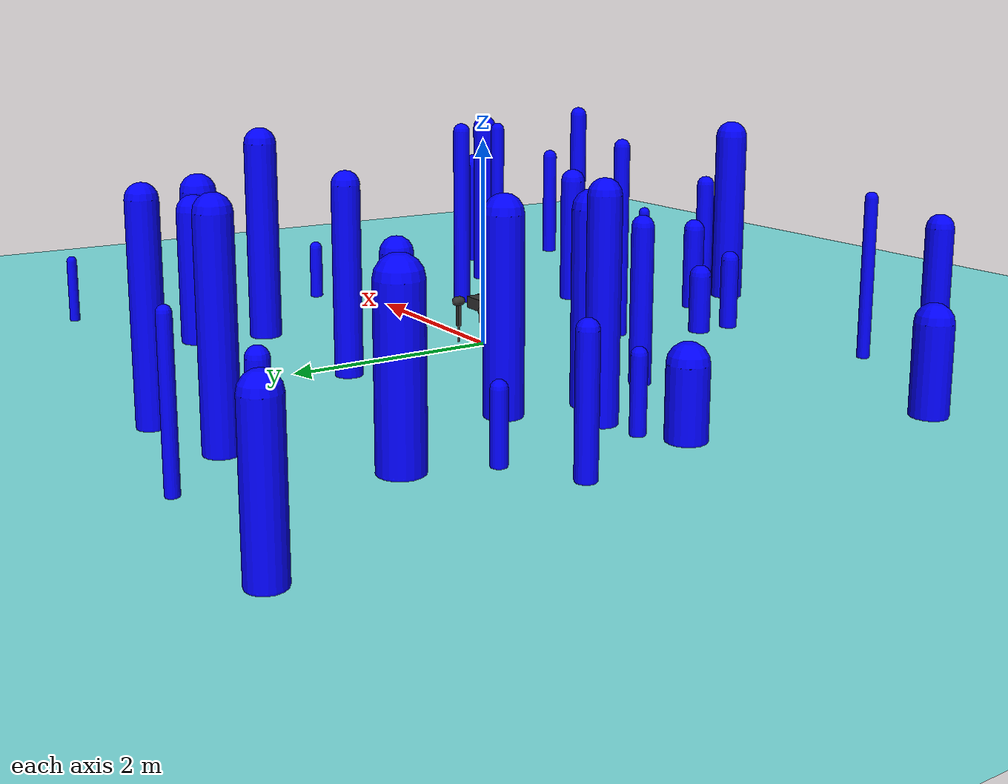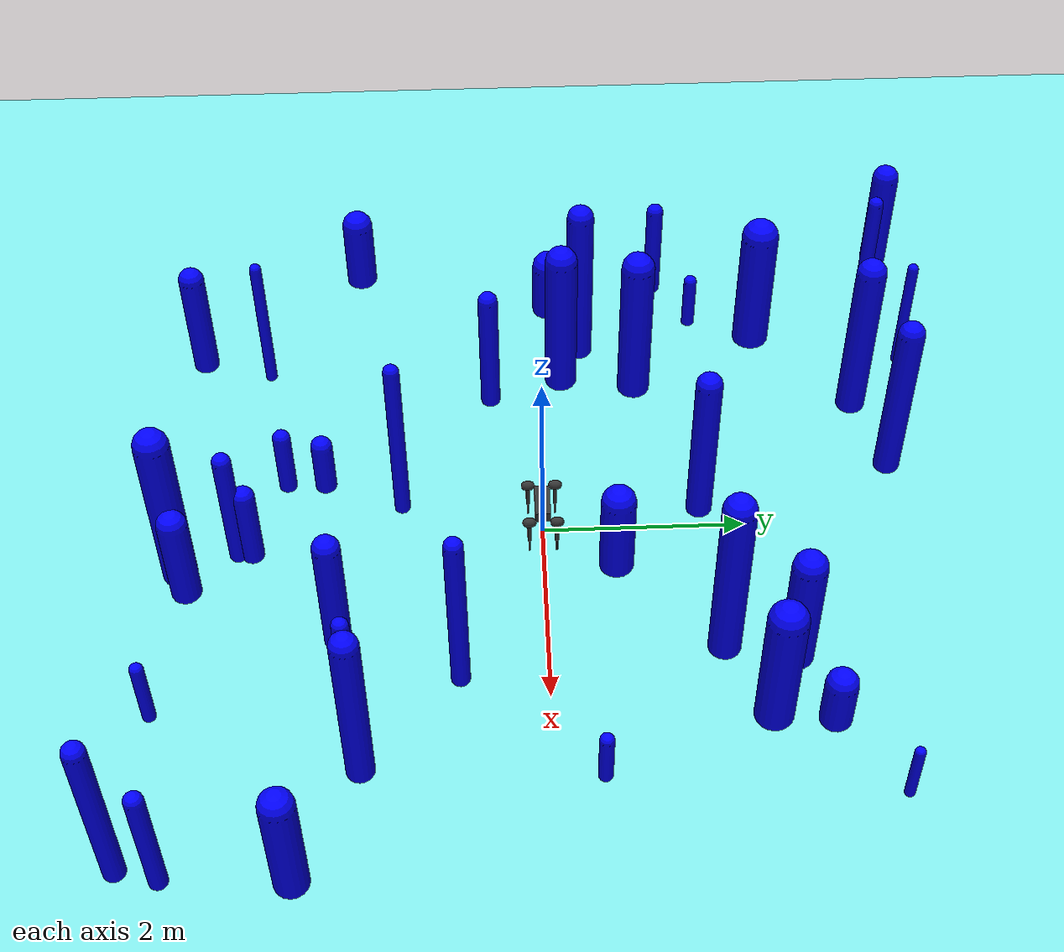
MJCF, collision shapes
<mujoco>
    <include file="aliengo.xml"/>
    <worldbody>

        <body name="obstacle_0" pos="1.627572791351251 2.303359444332589 0.6460351813359593" mocap="true">
            <geom type="capsule" size="0.16481485588494513 0.6460351813359593" rgba="0 0 1 1"/>
        </body>

        <body name="obstacle_1" pos="2.501388179700389 -1.7599431045375935 0.9032814938991485" mocap="true">
            <geom type="capsule" size="0.07671281822714426 0.9032814938991485" rgba="0 0 1 1"/>
        </body>

        <body name="obstacle_2" pos="1.7641580741112657 -0.8218137306497972 0.9454634746737409" mocap="true">
            <geom type="capsule" size="0.09025830902053814 0.9454634746737409" rgba="0 0 1 1"/>
        </body>

        <body name="obstacle_3" pos="-0.7082837938260438 -2.54146461151491 0.34602050637312964" mocap="true">
            <geom type="capsule" size="0.08904184026866771 0.34602050637312964" rgba="0 0 1 1"/>
        </body>

        <body name="obstacle_4" pos="2.7253809364022086 -1.7203715719378891 0.9115632153716917" mocap="true">
            <geom type="capsule" size="0.13283380764818337 0.9115632153716917" rgba="0 0 1 1"/>
        </body>

        <body name="obstacle_5" pos="3.818010891947373 -2.2709081095375367 0.6004305844406179" mocap="true">
            <geom type="capsule" size="0.1600483449986283 0.6004305844406179" rgba="0 0 1 1"/>
        </body>

        <body name="obstacle_6" pos="-3.8225458136954655 -1.8781623352359365 0.38457949118635376" mocap="true">
            <geom type="capsule" size="0.16142497978097764 0.38457949118635376" rgba="0 0 1 1"/>
        </body>

        <body name="obstacle_7" pos="2.8671798079670108 0.44816107045683484 0.2734955801953863" mocap="true">
            <geom type="capsule" size="0.06845320364538676 0.2734955801953863" rgba="0 0 1 1"/>
        </body>

        <body name="obstacle_8" pos="-3.540543442603399 1.35659232261197 0.5412586417980193" mocap="true">
            <geom type="capsule" size="0.08766913263305527 0.5412586417980193" rgba="0 0 1 1"/>
        </body>

        <body name="obstacle_9" pos="-2.9456790775629518 0.4230713059723952 0.3162603754019131" mocap="true">
            <geom type="capsule" size="0.067755209713386 0.3162603754019131" rgba="0 0 1 1"/>
        </body>

        <body name="obstacle_10" pos="0.4002204765707571 -3.5230773550857704 0.904172643406322" mocap="true">
            <geom type="capsule" size="0.1682016153930489 0.904172643406322" rgba="0 0 1 1"/>
        </body>

        <body name="obstacle_11" pos="-0.24442756612374517 1.57278336849288 0.8577828238043523" mocap="true">
            <geom type="capsule" size="0.12942745896585287 0.8577828238043523" rgba="0 0 1 1"/>
        </body>

        <body name="obstacle_12" pos="-3.4193399995293934 3.719734436635636 0.601889623752865" mocap="true">
            <geom type="capsule" size="0.07912744181605924 0.601889623752865" rgba="0 0 1 1"/>
        </body>

        <body name="obstacle_13" pos="-1.6398596339627138 3.3081081611211456 0.9033576533204553" mocap="true">
            <geom type="capsule" size="0.14910889426145119 0.9033576533204553" rgba="0 0 1 1"/>
        </body>

        <body name="obstacle_14" pos="0.19032512651673006 -2.8338142092360563 0.4237714684080312" mocap="true">
            <geom type="capsule" size="0.10968468599267125 0.4237714684080312" rgba="0 0 1 1"/>
        </body>

        <body name="obstacle_15" pos="1.4894651103276786 1.6471551571400873 0.9626741471722771" mocap="true">
            <geom type="capsule" size="0.1579980514237112 0.9626741471722771" rgba="0 0 1 1"/>
        </body>

        <body name="obstacle_16" pos="-1.8475154372999665 -0.4729236829008725 0.6954375428580818" mocap="true">
            <geom type="capsule" size="0.09944244539240957 0.6954375428580818" rgba="0 0 1 1"/>
        </body>

        <body name="obstacle_17" pos="-2.2893830647247198 -2.8045349978205794 0.7536563469511894" mocap="true">
            <geom type="capsule" size="0.05991682633999633 0.7536563469511894" rgba="0 0 1 1"/>
        </body>

        <body name="obstacle_18" pos="3.6549862071949724 -3.778872192885758 0.9011818195173762" mocap="true">
            <geom type="capsule" size="0.10343162384003311 0.9011818195173762" rgba="0 0 1 1"/>
        </body>

        <body name="obstacle_19" pos="3.154038706176606 3.103704553344868 0.31250206608363085" mocap="true">
            <geom type="capsule" size="0.050461628577882736 0.31250206608363085" rgba="0 0 1 1"/>
        </body>

        <body name="obstacle_20" pos="2.2776719917227393 2.015926485920618 0.6925234432148537" mocap="true">
            <geom type="capsule" size="0.1848717999239312 0.6925234432148537" rgba="0 0 1 1"/>
        </body>

        <body name="obstacle_21" pos="2.0662542305659315 -3.652269989390959 0.3562685002323092" mocap="true">
            <geom type="capsule" size="0.06460954080885216 0.3562685002323092" rgba="0 0 1 1"/>
        </body>

        <body name="obstacle_22" pos="0.45350954472271887 0.7031539207474511 0.4539159612228346" mocap="true">
            <geom type="capsule" size="0.16919973210870015 0.4539159612228346" rgba="0 0 1 1"/>
        </body>

        <body name="obstacle_23" pos="-3.2481396040690864 0.19132491279124864 0.3005037174687888" mocap="true">
            <geom type="capsule" size="0.17135430352371162 0.3005037174687888" rgba="0 0 1 1"/>
        </body>

        <body name="obstacle_24" pos="-2.1191905448041615 0.2769985604064775 0.8223321899577873" mocap="true">
            <geom type="capsule" size="0.16491765197026775 0.8223321899577873" rgba="0 0 1 1"/>
        </body>

        <body name="obstacle_25" pos="-2.570203042221957 0.49181102198395266 0.914031914191588" mocap="true">
            <geom type="capsule" size="0.13745553426706553 0.914031914191588" rgba="0 0 1 1"/>
        </body>

        <body name="obstacle_26" pos="-2.5110104248256704 -3.5117202456150265 0.5989975031526972" mocap="true">
            <geom type="capsule" size="0.1307794473572222 0.5989975031526972" rgba="0 0 1 1"/>
        </body>

        <body name="obstacle_27" pos="-1.9841847821621084 1.041247166777083 0.824844547852754" mocap="true">
            <geom type="capsule" size="0.16878481311586163 0.824844547852754" rgba="0 0 1 1"/>
        </body>

        <body name="obstacle_28" pos="-2.280994036429666 3.9084826116120315 0.6376844156272528" mocap="true">
            <geom type="capsule" size="0.0559217683436197 0.6376844156272528" rgba="0 0 1 1"/>
        </body>

        <body name="obstacle_29" pos="-0.7527525647776407 3.5438127713210443 0.9051307275745353" mocap="true">
            <geom type="capsule" size="0.1312675297199864 0.9051307275745353" rgba="0 0 1 1"/>
        </body>

        <body name="obstacle_30" pos="-3.9288679923074046 3.9142399375919004 0.5760310331632095" mocap="true">
            <geom type="capsule" size="0.14006782851110666 0.5760310331632095" rgba="0 0 1 1"/>
        </body>

        <body name="obstacle_31" pos="-0.698444372178864 -2.159036352855769 0.2830540117169748" mocap="true">
            <geom type="capsule" size="0.10782510143855567 0.2830540117169748" rgba="0 0 1 1"/>
        </body>

        <body name="obstacle_32" pos="3.7634169947890195 -3.396649400099145 0.6294148625651081" mocap="true">
            <geom type="capsule" size="0.08675471005581187 0.6294148625651081" rgba="0 0 1 1"/>
        </body>

        <body name="obstacle_33" pos="-2.9682317092994532 1.7138333303919344 0.2883247501606115" mocap="true">
            <geom type="capsule" size="0.06847115453827914 0.2883247501606115" rgba="0 0 1 1"/>
        </body>

        <body name="obstacle_34" pos="-0.36791258568953644 -1.3834955250134762 0.9434895564789196" mocap="true">
            <geom type="capsule" size="0.07803576999290854 0.9434895564789196" rgba="0 0 1 1"/>
        </body>

        <body name="obstacle_35" pos="0.18620242055745884 -2.974912671483107 0.6662939289869307" mocap="true">
            <geom type="capsule" size="0.09122862145755602 0.6662939289869307" rgba="0 0 1 1"/>
        </body>

        <body name="obstacle_36" pos="2.3447521965156923 2.569216789689029 0.26418795391272876" mocap="true">
            <geom type="capsule" size="0.1529617924649936 0.26418795391272876" rgba="0 0 1 1"/>
        </body>

        <body name="obstacle_37" pos="0.6292230824485046 -3.443536497871457 0.49016609000490385" mocap="true">
            <geom type="capsule" size="0.14647377233884162 0.49016609000490385" rgba="0 0 1 1"/>
        </body>

        <body name="obstacle_38" pos="1.2607997237957411 -1.96938025396937 0.6605299526739741" mocap="true">
            <geom type="capsule" size="0.13199365894788184 0.6605299526739741" rgba="0 0 1 1"/>
        </body>

        <body name="obstacle_39" pos="-2.703970659541201 2.370959473970278 0.7023144663687624" mocap="true">
            <geom type="capsule" size="0.19096949540743702 0.7023144663687624" rgba="0 0 1 1"/>
        </body>

    </worldbody>
    </mujoco>

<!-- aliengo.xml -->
<mujoco model="aliengo_description">
    <compiler angle="radian" meshdir="meshes/" />
    <size njmax="500" nconmax="100" />
    <option gravity='0 0 -9.806' iterations='50' solver='Newton' timestep='0.002' cone='elliptic'  impratio="100">

    </option>

    <default>
        <geom contype="1" conaffinity="1" friction="0.6 0.3 0.3" rgba="0.5 0.6 0.7 1" margin="0.001" group="0"/>

        <light castshadow="false" diffuse="1 1 1"/>
        <motor ctrlrange="-40 40" ctrllimited="true"/>
        <camera fovy="60"/>
        <joint damping="0.01" armature="0.01" frictionloss="0.2" />

    </default>

    <asset>
        <mesh name="trunk" file="trunk.stl" />
        <mesh name="hip" file="hip.stl" />
        <mesh name="thigh_mirror" file="thigh_mirror.stl" />
        <mesh name="calf" file="calf.stl" />
        <mesh name="thigh" file="thigh.stl" />
    </asset>

    <asset>
        <texture type="skybox" builtin="gradient" rgb1="1.0 1.0 1.0" rgb2="1.0 1.0 1.0" width="512" height="512"/>
        <texture name="plane" type="2d" builtin="flat" rgb1="1 1 1" rgb2="1 1 1" width="512" height="512" mark="cross" markrgb="0 0 0"/>
        <material name="plane" reflectance="0.0" texture="plane" texrepeat="3 3" texuniform="true"/>
    </asset>

    <visual>
        <rgba com="0.502 1.0 0 0.5" contactforce="0.98 0.4 0.4 0.7" contactpoint="1.0 1.0 0.6 0.4"/>
        <scale com="0.2" forcewidth="0.035" contactwidth="0.10" contactheight="0.04"/>
    </visual>

    <worldbody>
        <light directional="true" diffuse=".8 .8 .8" pos="0 0 10" dir="0 0 -10"/>
        <camera name="track" mode="trackcom" pos="0 -1.3 1.6" xyaxes="1 0 0 0 0.707 0.707"/>
        <geom name='floor' type='plane' conaffinity='1' condim='3' contype='1' rgba="0.5 0.9 0.9 0.1" material='plane' pos='0 0 0' size='0 0 1'/>

        <body name="trunk" pos="0 0 0.4">
            <inertial pos="0.00846406 0.00404455 -0.000762916" quat="-3.12625e-05 0.708321 0.00247254 0.705886" mass="9.042" diaginertia="0.174706 0.161175 0.033357" />
            <joint type="free" />
            <geom type="mesh" contype="0" conaffinity="0" group="1" rgba="0.2 0.2 0.2 1" mesh="trunk" />
            <geom size="0.18 0.075 0.056" type="box" rgba="0.2 0.2 0.2 0" />
            <geom size="0.0005 0.0005 0.0005" type="box" contype="0" conaffinity="0" group="1" rgba="0.8 0 0 0" />
            <geom size="0.0005 0.0005 0.0005" type="box" rgba="0.8 0 0 0" />
            <site name="imu" pos="0 0 0"/>

            <body name="FR_hip" pos="0.2399 -0.051 0">
                <inertial pos="-0.022191 -0.015144 -1.5e-05" quat="0.0135493 0.706835 -0.0117635 0.707151" mass="1.993" diaginertia="0.00558695 0.00491009 0.00290132" />
                <joint name="FR_hip_joint" pos="0 0 0" axis="1 0 0" limited="true" range="-1.22 1.22" />
                <geom quat="0 1 0 0" type="mesh" contype="0" conaffinity="0" group="1" rgba="0.2 0.2 0.2 1" mesh="hip" />
                <geom size="0.046 0.0209" pos="0 -0.083 0" quat="0.707107 0.707107 0 0" type="capsule" rgba="0.2 0.2 0.2 0" />
                <body name="FR_thigh" pos="0 -0.083 0">
                    <inertial pos="-0.005607 0.003877 -0.048199" quat="0.694544 -0.0335669 -0.031246 0.717987" mass="0.639" diaginertia="0.0058474 0.00571186 0.000324584" />
                    <joint name="FR_thigh_joint" pos="0 0 0" axis="0 1 0" limited="true" range="0 1.8"/>
                    <geom type="mesh" contype="0" conaffinity="0" group="1" rgba="0.2 0.2 0.2 1" mesh="thigh_mirror" />
                    <geom size="0.125 0.0187 0.0215" pos="0 0 -0.125" quat="0.707107 0 0.707107 0" type="box" rgba="0.2 0.2 0.2 0" />
                    <body name="FR_calf" pos="0 0 -0.25">
                        <inertial pos="0.00215606 4.88427e-05 -0.166671" quat="0.707462 0.00517582 0.00535172 0.706712" mass="0.267" diaginertia="0.00690975 0.00689712 5.4885e-05" />
                        <joint name="FR_calf_joint" pos="0 0 0" axis="0 1 0" limited="true" range="-2.78 -0.65" />
                        <geom type="mesh" contype="0" conaffinity="0" group="1" rgba="0 0 0 1" mesh="calf" />
                        <geom size="0.125 0.0104 0.008" pos="0 0 -0.125" quat="0.707107 0 0.707107 0" type="box" rgba="0 0 0 0" />
                        <geom size="0.0165" pos="0 0 -0.25" contype="0" conaffinity="0" group="1" rgba="0 0 0 1" />
                        <geom size="0.0265" pos="0 0 -0.25" rgba="0 0 0 1" />
                    </body>
                </body>
            </body>
            <body name="FL_hip" pos="0.2399 0.051 0">
                <inertial pos="-0.022191 0.015144 -1.5e-05" quat="-0.0135493 0.706835 0.0117635 0.707151" mass="1.993" diaginertia="0.00558695 0.00491009 0.00290132" />
                <joint name="FL_hip_joint" pos="0 0 0" axis="1 0 0" limited="true" range="-1.22 1.22" />
                <geom type="mesh" contype="0" conaffinity="0" group="1" rgba="0.2 0.2 0.2 1" mesh="hip" />
                <geom size="0.046 0.0209" pos="0 0.083 0" quat="0.707107 0.707107 0 0" type="capsule" rgba="0.2 0.2 0.2 0" />
                <body name="FL_thigh" pos="0 0.083 0">
                    <inertial pos="-0.005607 -0.003877 -0.048199" quat="0.717987 -0.031246 -0.0335669 0.694544" mass="0.639" diaginertia="0.0058474 0.00571186 0.000324584" />
                    <joint name="FL_thigh_joint" pos="0 0 0" axis="0 1 0" limited="true" range="0 1.8"/>
                    <geom type="mesh" contype="0" conaffinity="0" group="1" rgba="0.2 0.2 0.2 1" mesh="thigh" />
                    <geom size="0.125 0.0187 0.0215" pos="0 0 -0.125" quat="0.707107 0 0.707107 0" type="box" rgba="0.2 0.2 0.2 0" />
                    <body name="FL_calf" pos="0 0 -0.25">
                        <inertial pos="0.00215606 4.88427e-05 -0.166671" quat="0.707462 0.00517582 0.00535172 0.706712" mass="0.267" diaginertia="0.00690975 0.00689712 5.4885e-05" />
                        <joint name="FL_calf_joint" pos="0 0 0" axis="0 1 0" limited="true" range="-2.78 -0.65" />
                        <geom type="mesh" contype="0" conaffinity="0" group="1" rgba="0 0 0 1" mesh="calf" />
                        <geom size="0.125 0.0104 0.008" pos="0 0 -0.125" quat="0.707107 0 0.707107 0" type="box" rgba="0 0 0 0" />
                        <geom size="0.0165" pos="0 0 -0.25" contype="0" conaffinity="0" group="1" rgba="0 0 0 1" />
                        <geom size="0.0265" pos="0 0 -0.25" rgba="0 0 0 1" />
                    </body>
                </body>
            </body>
            <body name="RR_hip" pos="-0.2399 -0.051 0">
                <inertial pos="0.022191 -0.015144 -1.5e-05" quat="-0.0117635 0.707151 0.0135493 0.706835" mass="1.993" diaginertia="0.00558695 0.00491009 0.00290132" />
                <joint name="RR_hip_joint" pos="0 0 0" axis="1 0 0" limited="true" range="-1.22 1.22" />
                <geom quat="0 0 0 -1" type="mesh" contype="0" conaffinity="0" group="1" rgba="0.2 0.2 0.2 1" mesh="hip" />
                <geom size="0.046 0.0209" pos="0 -0.083 0" quat="0.707107 0.707107 0 0" type="capsule" rgba="0.2 0.2 0.2 0" />
                <body name="RR_thigh" pos="0 -0.083 0">
                    <inertial pos="-0.005607 0.003877 -0.048199" quat="0.694544 -0.0335669 -0.031246 0.717987" mass="0.639" diaginertia="0.0058474 0.00571186 0.000324584" />
                    <joint name="RR_thigh_joint" pos="0 0 0" axis="0 1 0" limited="true" range="0 1.8"/>
                    <geom type="mesh" contype="0" conaffinity="0" group="1" rgba="0.2 0.2 0.2 1" mesh="thigh_mirror" />
                    <geom size="0.125 0.0187 0.0215" pos="0 0 -0.125" quat="0.707107 0 0.707107 0" type="box" rgba="0.2 0.2 0.2 0" />
                    <body name="RR_calf" pos="0 0 -0.25">
                        <inertial pos="0.00215606 4.88427e-05 -0.166671" quat="0.707462 0.00517582 0.00535172 0.706712" mass="0.267" diaginertia="0.00690975 0.00689712 5.4885e-05" />
                        <joint name="RR_calf_joint" pos="0 0 0" axis="0 1 0" limited="true" range="-2.78 -0.65" />
                        <geom type="mesh" contype="0" conaffinity="0" group="1" rgba="0 0 0 1" mesh="calf" />
                        <geom size="0.125 0.0104 0.008" pos="0 0 -0.125" quat="0.707107 0 0.707107 0" type="box" rgba="0 0 0 0" />
                        <geom size="0.0165" pos="0 0 -0.25" contype="0" conaffinity="0" group="1" rgba="0 0 0 1" />
                        <geom size="0.0265" pos="0 0 -0.25" rgba="0 0 0 1" />
                    </body>
                </body>
            </body>
            <body name="RL_hip" pos="-0.2399 0.051 0">
                <inertial pos="0.022191 0.015144 -1.5e-05" quat="0.0117635 0.707151 -0.0135493 0.706835" mass="1.993" diaginertia="0.00558695 0.00491009 0.00290132" />
                <joint name="RL_hip_joint" pos="0 0 0" axis="1 0 0" limited="true" range="-1.22 1.22" />
                <geom quat="0 0 1 0" type="mesh" contype="0" conaffinity="0" group="1" rgba="0.2 0.2 0.2 1" mesh="hip" />
                <geom size="0.046 0.0209" pos="0 0.083 0" quat="0.707107 0.707107 0 0" type="capsule" rgba="0.2 0.2 0.2 0" />
                <body name="RL_thigh" pos="0 0.083 0">
                    <inertial pos="-0.005607 -0.003877 -0.048199" quat="0.717987 -0.031246 -0.0335669 0.694544" mass="0.639" diaginertia="0.0058474 0.00571186 0.000324584" />
                    <joint name="RL_thigh_joint" pos="0 0 0" axis="0 1 0" limited="true" range="0 1.8"/>
                    <geom type="mesh" contype="0" conaffinity="0" group="1" rgba="0.2 0.2 0.2 1" mesh="thigh" />
                    <geom size="0.125 0.0187 0.0215" pos="0 0 -0.125" quat="0.707107 0 0.707107 0" type="box" rgba="0.2 0.2 0.2 0" />
                    <body name="RL_calf" pos="0 0 -0.25">
                        <inertial pos="0.00215606 4.88427e-05 -0.166671" quat="0.707462 0.00517582 0.00535172 0.706712" mass="0.267" diaginertia="0.00690975 0.00689712 5.4885e-05" />
                        <joint name="RL_calf_joint" pos="0 0 0" axis="0 1 0" limited="true" range="-2.78 -0.65" />
                        <geom type="mesh" contype="0" conaffinity="0" group="1" rgba="0 0 0 1" mesh="calf" />
                        <geom size="0.125 0.0104 0.008" pos="0 0 -0.125" quat="0.707107 0 0.707107 0" type="box" rgba="0 0 0 0" />
                        <geom size="0.0165" pos="0 0 -0.25" contype="0" conaffinity="0" group="1" rgba="0 0 0 1" />
                        <geom size="0.0265" pos="0 0 -0.25" rgba="0 0 0 1" />
                    </body>
                </body>
            </body>
        </body>
    </worldbody>

    <actuator>
        <motor name="FR_hip"       gear="1" joint="FR_hip_joint"/>
        <motor name="FR_thigh"       gear="1" joint="FR_thigh_joint"/>
        <motor name="FR_calf"       gear="1" joint="FR_calf_joint"/>
        <motor name="FL_hip"     gear="1" joint="FL_hip_joint"/>
        <motor name="FL_thigh"     gear="1" joint="FL_thigh_joint"/>
        <motor name="FL_calf"     gear="1" joint="FL_calf_joint"/>
        <motor name="RR_hip"      gear="1" joint="RR_hip_joint"/>
        <motor name="RR_thigh"   gear="1" joint="RR_thigh_joint"/>
        <motor name="RR_calf"   gear="1" joint="RR_calf_joint" />
        <motor name="RL_hip"      gear="1" joint="RL_hip_joint"/>
        <motor name="RL_thigh"      gear="1" joint="RL_thigh_joint"/>
        <motor name="RL_calf"      gear="1" joint="RL_calf_joint"/>
    </actuator>

    <sensor>

        <jointpos name="FR_hip_pos"     joint="FR_hip_joint"/>
        <jointpos name="FR_thigh_pos"   joint="FR_thigh_joint"/>
        <jointpos name="FR_calf_pos"    joint="FR_calf_joint"/>
        <jointpos name="FL_hip_pos"     joint="FL_hip_joint"/>
        <jointpos name="FL_thigh_pos"   joint="FL_thigh_joint"/>
        <jointpos name="FL_calf_pos"    joint="FL_calf_joint"/>
        <jointpos name="RR_hip_pos"     joint="RR_hip_joint"/>
        <jointpos name="RR_thigh_pos"   joint="RR_thigh_joint"/>
        <jointpos name="RR_calf_pos"    joint="RR_calf_joint" />
        <jointpos name="RL_hip_pos"     joint="RL_hip_joint"/>
        <jointpos name="RL_thigh_pos"   joint="RL_thigh_joint"/>
        <jointpos name="RL_calf_pos"    joint="RL_calf_joint"/>

        <jointvel name="FR_hip_vel"     joint="FR_hip_joint"/>
        <jointvel name="FR_thigh_vel"   joint="FR_thigh_joint"/>
        <jointvel name="FR_calf_vel"    joint="FR_calf_joint"/>
        <jointvel name="FL_hip_vel"     joint="FL_hip_joint"/>
        <jointvel name="FL_thigh_vel"   joint="FL_thigh_joint"/>
        <jointvel name="FL_calf_vel"    joint="FL_calf_joint"/>
        <jointvel name="RR_hip_vel"     joint="RR_hip_joint"/>
        <jointvel name="RR_thigh_vel"   joint="RR_thigh_joint"/>
        <jointvel name="RR_calf_vel"    joint="RR_calf_joint" />
        <jointvel name="RL_hip_vel"     joint="RL_hip_joint"/>
        <jointvel name="RL_thigh_vel"   joint="RL_thigh_joint"/>
        <jointvel name="RL_calf_vel"    joint="RL_calf_joint"/>

        <accelerometer name="Body_Acc" site="imu"/>

        <gyro name="Body_Gyro" site="imu"/>

        <framepos name="Body_Pos" objtype="site" objname="imu"/>

        <framequat name="Body_Quat" objtype="site" objname="imu"/>

    </sensor>

</mujoco>
